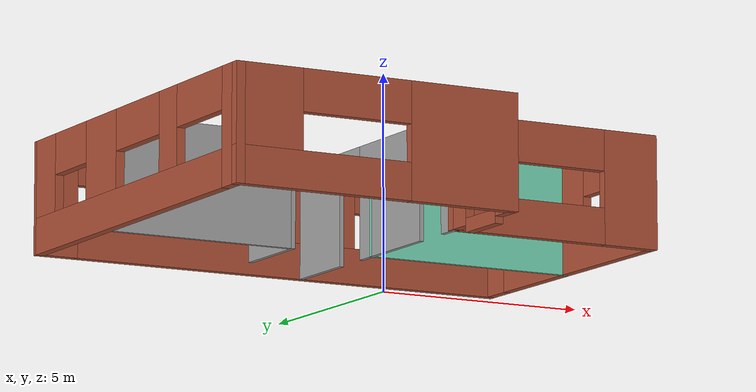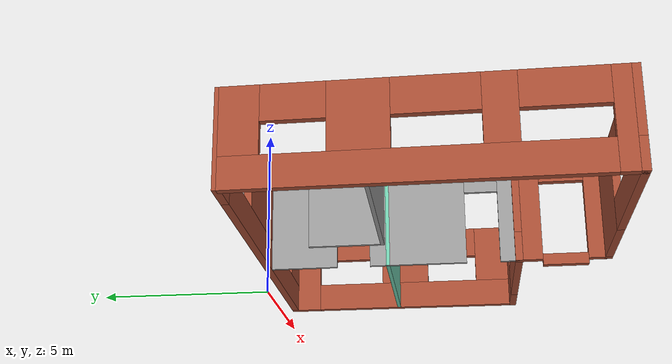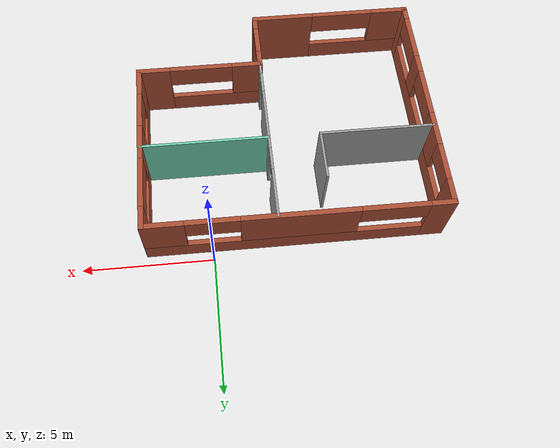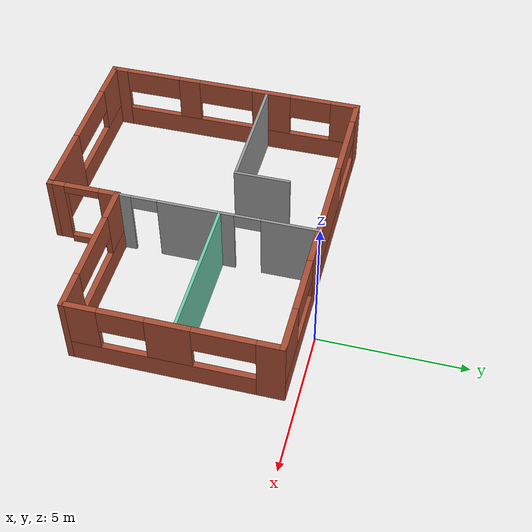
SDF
<?xml version='1.0'?>
<sdf version='1.6'>
  <model name='model'>
    <pose frame=''>-3.14097 -5.063 0 0 -0 0</pose>
    <link name='Wall_0'>
      <pose frame=''>-2.8e-05 4.6 0 0 -0 0</pose>
      <visual name='Wall_0_Visual_0'>
        <pose frame=''>-5.22555 0 1.25 0 -0 0</pose>
        <geometry>
          <box>
            <size>0.948891 0.2 2.5</size>
          </box>
        </geometry>
        <material>
          <script>
            <uri>file://media/materials/scripts/gazebo.material</uri>
            <name>Gazebo/Bricks</name>
          </script>
          <ambient>1 1 1 1</ambient>
        </material>
        <meta>
          <layer>0</layer>
        </meta>
      </visual>
      <collision name='Wall_0_Collision_0'>
        <geometry>
          <box>
            <size>0.948891 0.2 2.5</size>
          </box>
        </geometry>
        <pose frame=''>-5.22555 0 1.25 0 -0 0</pose>
      </collision>
      <visual name='Wall_0_Visual_1'>
        <pose frame=''>0.474446 0 0.4 0 -0 0</pose>
        <geometry>
          <box>
            <size>10.4511 0.2 0.8</size>
          </box>
        </geometry>
        <material>
          <script>
            <uri>file://media/materials/scripts/gazebo.material</uri>
            <name>Gazebo/Bricks</name>
          </script>
          <ambient>1 1 1 1</ambient>
        </material>
        <meta>
          <layer>0</layer>
        </meta>
      </visual>
      <collision name='Wall_0_Collision_1'>
        <geometry>
          <box>
            <size>10.4511 0.2 0.8</size>
          </box>
        </geometry>
        <pose frame=''>0.474446 0 0.4 0 -0 0</pose>
      </collision>
      <visual name='Wall_0_Visual_2'>
        <pose frame=''>-0.083414 0 1.65 0 -0 0</pose>
        <geometry>
          <box>
            <size>4.33539 0.2 1.7</size>
          </box>
        </geometry>
        <material>
          <script>
            <uri>file://media/materials/scripts/gazebo.material</uri>
            <name>Gazebo/Bricks</name>
          </script>
          <ambient>1 1 1 1</ambient>
        </material>
        <meta>
          <layer>0</layer>
        </meta>
      </visual>
      <collision name='Wall_0_Collision_2'>
        <geometry>
          <box>
            <size>4.33539 0.2 1.7</size>
          </box>
        </geometry>
        <pose frame=''>-0.083414 0 1.65 0 -0 0</pose>
      </collision>
      <visual name='Wall_0_Visual_3'>
        <pose frame=''>4.89214 0 1.65 0 -0 0</pose>
        <geometry>
          <box>
            <size>1.61572 0.2 1.7</size>
          </box>
        </geometry>
        <material>
          <script>
            <uri>file://media/materials/scripts/gazebo.material</uri>
            <name>Gazebo/Bricks</name>
          </script>
          <ambient>1 1 1 1</ambient>
        </material>
        <meta>
          <layer>0</layer>
        </meta>
      </visual>
      <collision name='Wall_0_Collision_3'>
        <geometry>
          <box>
            <size>1.61572 0.2 1.7</size>
          </box>
        </geometry>
        <pose frame=''>4.89214 0 1.65 0 -0 0</pose>
      </collision>
      <visual name='Wall_0_Visual_4'>
        <pose frame=''>-3.50111 0 2.05 0 -0 0</pose>
        <geometry>
          <box>
            <size>2.5 0.2 0.9</size>
          </box>
        </geometry>
        <material>
          <script>
            <uri>file://media/materials/scripts/gazebo.material</uri>
            <name>Gazebo/Bricks</name>
          </script>
          <ambient>1 1 1 1</ambient>
        </material>
        <meta>
          <layer>0</layer>
        </meta>
      </visual>
      <collision name='Wall_0_Collision_4'>
        <geometry>
          <box>
            <size>2.5 0.2 0.9</size>
          </box>
        </geometry>
        <pose frame=''>-3.50111 0 2.05 0 -0 0</pose>
      </collision>
      <visual name='Wall_0_Visual_5'>
        <pose frame=''>3.08428 0 2.05 0 -0 0</pose>
        <geometry>
          <box>
            <size>2 0.2 0.9</size>
          </box>
        </geometry>
        <material>
          <script>
            <uri>file://media/materials/scripts/gazebo.material</uri>
            <name>Gazebo/Bricks</name>
          </script>
          <ambient>1 1 1 1</ambient>
        </material>
        <meta>
          <layer>0</layer>
        </meta>
      </visual>
      <collision name='Wall_0_Collision_5'>
        <geometry>
          <box>
            <size>2 0.2 0.9</size>
          </box>
        </geometry>
        <pose frame=''>3.08428 0 2.05 0 -0 0</pose>
      </collision>
    </link>
    <link name='Wall_1'>
      <pose frame=''>5.59997 1.175 0 0 0 -1.5708</pose>
      <visual name='Wall_1_Visual_0'>
        <pose frame=''>-3.07016 0 1.25 0 -0 0</pose>
        <geometry>
          <box>
            <size>0.909337 0.2 2.5</size>
          </box>
        </geometry>
        <material>
          <script>
            <uri>file://media/materials/scripts/gazebo.material</uri>
            <name>Gazebo/Bricks</name>
          </script>
          <ambient>1 1 1 1</ambient>
        </material>
        <meta>
          <layer>0</layer>
        </meta>
      </visual>
      <collision name='Wall_1_Collision_0'>
        <geometry>
          <box>
            <size>0.909337 0.2 2.5</size>
          </box>
        </geometry>
        <pose frame=''>-3.07016 0 1.25 0 -0 0</pose>
      </collision>
      <visual name='Wall_1_Visual_1'>
        <pose frame=''>0.454668 0 0.4 0 -0 0</pose>
        <geometry>
          <box>
            <size>6.14033 0.2 0.8</size>
          </box>
        </geometry>
        <material>
          <script>
            <uri>file://media/materials/scripts/gazebo.material</uri>
            <name>Gazebo/Bricks</name>
          </script>
          <ambient>1 1 1 1</ambient>
        </material>
        <meta>
          <layer>0</layer>
        </meta>
      </visual>
      <collision name='Wall_1_Collision_1'>
        <geometry>
          <box>
            <size>6.14033 0.2 0.8</size>
          </box>
        </geometry>
        <pose frame=''>0.454668 0 0.4 0 -0 0</pose>
      </collision>
      <visual name='Wall_1_Visual_2'>
        <pose frame=''>0.106547 0 1.65 0 -0 0</pose>
        <geometry>
          <box>
            <size>1.44408 0.2 1.7</size>
          </box>
        </geometry>
        <material>
          <script>
            <uri>file://media/materials/scripts/gazebo.material</uri>
            <name>Gazebo/Bricks</name>
          </script>
          <ambient>1 1 1 1</ambient>
        </material>
        <meta>
          <layer>0</layer>
        </meta>
      </visual>
      <collision name='Wall_1_Collision_2'>
        <geometry>
          <box>
            <size>1.44408 0.2 1.7</size>
          </box>
        </geometry>
        <pose frame=''>0.106547 0 1.65 0 -0 0</pose>
      </collision>
      <visual name='Wall_1_Visual_3'>
        <pose frame=''>2.92671 0 1.65 0 -0 0</pose>
        <geometry>
          <box>
            <size>1.19624 0.2 1.7</size>
          </box>
        </geometry>
        <material>
          <script>
            <uri>file://media/materials/scripts/gazebo.material</uri>
            <name>Gazebo/Bricks</name>
          </script>
          <ambient>1 1 1 1</ambient>
        </material>
        <meta>
          <layer>0</layer>
        </meta>
      </visual>
      <collision name='Wall_1_Collision_3'>
        <geometry>
          <box>
            <size>1.19624 0.2 1.7</size>
          </box>
        </geometry>
        <pose frame=''>2.92671 0 1.65 0 -0 0</pose>
      </collision>
      <visual name='Wall_1_Visual_4'>
        <pose frame=''>-1.61549 0 2.05 0 -0 0</pose>
        <geometry>
          <box>
            <size>2 0.2 0.9</size>
          </box>
        </geometry>
        <material>
          <script>
            <uri>file://media/materials/scripts/gazebo.material</uri>
            <name>Gazebo/Bricks</name>
          </script>
          <ambient>1 1 1 1</ambient>
        </material>
        <meta>
          <layer>0</layer>
        </meta>
      </visual>
      <collision name='Wall_1_Collision_4'>
        <geometry>
          <box>
            <size>2 0.2 0.9</size>
          </box>
        </geometry>
        <pose frame=''>-1.61549 0 2.05 0 -0 0</pose>
      </collision>
      <visual name='Wall_1_Visual_5'>
        <pose frame=''>1.57859 0 2.05 0 -0 0</pose>
        <geometry>
          <box>
            <size>1.5 0.2 0.9</size>
          </box>
        </geometry>
        <material>
          <script>
            <uri>file://media/materials/scripts/gazebo.material</uri>
            <name>Gazebo/Bricks</name>
          </script>
          <ambient>1 1 1 1</ambient>
        </material>
        <meta>
          <layer>0</layer>
        </meta>
      </visual>
      <collision name='Wall_1_Collision_5'>
        <geometry>
          <box>
            <size>1.5 0.2 0.9</size>
          </box>
        </geometry>
        <pose frame=''>1.57859 0 2.05 0 -0 0</pose>
      </collision>
    </link>
    <link name='Wall_10'>
      <collision name='Wall_10_Collision'>
        <geometry>
          <box>
            <size>4.95 0.1 2.5</size>
          </box>
        </geometry>
        <pose frame=''>0 0 1.25 0 -0 0</pose>
      </collision>
      <visual name='Wall_10_Visual'>
        <pose frame=''>0 0 1.25 0 -0 0</pose>
        <geometry>
          <box>
            <size>4.95 0.1 2.5</size>
          </box>
        </geometry>
        <material>
          <script>
            <uri>file://media/materials/scripts/gazebo.material</uri>
            <name>Gazebo/Grey</name>
          </script>
          <ambient>0.435294 0.796078 0.67451 1</ambient>
        </material>
        <meta>
          <layer>0</layer>
        </meta>
      </visual>
      <pose frame=''>3.17497 1.285 0 0 -0 0</pose>
    </link>
    <link name='Wall_105'>
      <collision name='Wall_105_Collision'>
        <geometry>
          <box>
            <size>1.95 0.1 2.5</size>
          </box>
        </geometry>
        <pose frame=''>0 0 1.25 0 -0 0</pose>
      </collision>
      <visual name='Wall_105_Visual'>
        <pose frame=''>0 0 1.25 0 -0 0</pose>
        <geometry>
          <box>
            <size>1.95 0.1 2.5</size>
          </box>
        </geometry>
        <material>
          <script>
            <uri>file://media/materials/scripts/gazebo.material</uri>
            <name>Gazebo/Grey</name>
          </script>
          <ambient>1 1 1 1</ambient>
        </material>
        <meta>
          <layer>0</layer>
        </meta>
      </visual>
      <pose frame=''>-1.21903 2.21 0 0 -0 1.5708</pose>
    </link>
    <link name='Wall_13'>
      <collision name='Wall_13_Collision'>
        <geometry>
          <box>
            <size>4.45 0.1 2.5</size>
          </box>
        </geometry>
        <pose frame=''>0 0 1.25 0 -0 0</pose>
      </collision>
      <visual name='Wall_13_Visual'>
        <pose frame=''>0 0 1.25 0 -0 0</pose>
        <geometry>
          <box>
            <size>4.45 0.1 2.5</size>
          </box>
        </geometry>
        <material>
          <script>
            <uri>file://media/materials/scripts/gazebo.material</uri>
            <name>Gazebo/Grey</name>
          </script>
          <ambient>1 1 1 1</ambient>
        </material>
        <meta>
          <layer>0</layer>
        </meta>
      </visual>
      <pose frame=''>-3.39403 1.285 0 0 -0 0</pose>
    </link>
    <link name='Wall_2'>
      <pose frame=''>3.17497 -2.25 0 0 -0 3.14159</pose>
      <visual name='Wall_2_Visual_0'>
        <pose frame=''>-1.86504 0 1.25 0 -0 0</pose>
        <geometry>
          <box>
            <size>1.32004 0.2 2.5</size>
          </box>
        </geometry>
        <material>
          <script>
            <uri>file://media/materials/scripts/gazebo.material</uri>
            <name>Gazebo/Bricks</name>
          </script>
          <ambient>1 1 1 1</ambient>
        </material>
        <meta>
          <layer>0</layer>
        </meta>
      </visual>
      <collision name='Wall_2_Collision_0'>
        <geometry>
          <box>
            <size>1.32004 0.2 2.5</size>
          </box>
        </geometry>
        <pose frame=''>-1.86504 0 1.25 0 -0 0</pose>
      </collision>
      <visual name='Wall_2_Visual_1'>
        <pose frame=''>0.660018 0 0.4 0 -0 0</pose>
        <geometry>
          <box>
            <size>3.73008 0.2 0.8</size>
          </box>
        </geometry>
        <material>
          <script>
            <uri>file://media/materials/scripts/gazebo.material</uri>
            <name>Gazebo/Bricks</name>
          </script>
          <ambient>1 1 1 1</ambient>
        </material>
        <meta>
          <layer>0</layer>
        </meta>
      </visual>
      <collision name='Wall_2_Collision_1'>
        <geometry>
          <box>
            <size>3.73008 0.2 0.8</size>
          </box>
        </geometry>
        <pose frame=''>0.660018 0 0.4 0 -0 0</pose>
      </collision>
      <visual name='Wall_2_Visual_2'>
        <pose frame=''>1.91002 0 1.65 0 -0 0</pose>
        <geometry>
          <box>
            <size>1.23008 0.2 1.7</size>
          </box>
        </geometry>
        <material>
          <script>
            <uri>file://media/materials/scripts/gazebo.material</uri>
            <name>Gazebo/Bricks</name>
          </script>
          <ambient>1 1 1 1</ambient>
        </material>
        <meta>
          <layer>0</layer>
        </meta>
      </visual>
      <collision name='Wall_2_Collision_2'>
        <geometry>
          <box>
            <size>1.23008 0.2 1.7</size>
          </box>
        </geometry>
        <pose frame=''>1.91002 0 1.65 0 -0 0</pose>
      </collision>
      <visual name='Wall_2_Visual_3'>
        <pose frame=''>0.044979 0 2.05 0 -0 0</pose>
        <geometry>
          <box>
            <size>2.5 0.2 0.9</size>
          </box>
        </geometry>
        <material>
          <script>
            <uri>file://media/materials/scripts/gazebo.material</uri>
            <name>Gazebo/Bricks</name>
          </script>
          <ambient>1 1 1 1</ambient>
        </material>
        <meta>
          <layer>0</layer>
        </meta>
      </visual>
      <collision name='Wall_2_Collision_3'>
        <geometry>
          <box>
            <size>2.5 0.2 0.9</size>
          </box>
        </geometry>
        <pose frame=''>0.044979 0 2.05 0 -0 0</pose>
      </collision>
    </link>
    <link name='Wall_3'>
      <pose frame=''>0.749972 -3.425 0 0 0 -1.5708</pose>
      <visual name='Wall_3_Visual_0'>
        <pose frame=''>-0.912077 0 1.25 0 -0 0</pose>
        <geometry>
          <box>
            <size>0.725846 0.2 2.5</size>
          </box>
        </geometry>
        <material>
          <script>
            <uri>file://media/materials/scripts/gazebo.material</uri>
            <name>Gazebo/Bricks</name>
          </script>
          <ambient>1 1 1 1</ambient>
        </material>
        <meta>
          <layer>0</layer>
        </meta>
      </visual>
      <collision name='Wall_3_Collision_0'>
        <geometry>
          <box>
            <size>0.725846 0.2 2.5</size>
          </box>
        </geometry>
        <pose frame=''>-0.912077 0 1.25 0 -0 0</pose>
      </collision>
      <visual name='Wall_3_Visual_1'>
        <pose frame=''>0.962923 0 1.25 0 -0 0</pose>
        <geometry>
          <box>
            <size>0.624154 0.2 2.5</size>
          </box>
        </geometry>
        <material>
          <script>
            <uri>file://media/materials/scripts/gazebo.material</uri>
            <name>Gazebo/Bricks</name>
          </script>
          <ambient>1 1 1 1</ambient>
        </material>
        <meta>
          <layer>0</layer>
        </meta>
      </visual>
      <collision name='Wall_3_Collision_1'>
        <geometry>
          <box>
            <size>0.624154 0.2 2.5</size>
          </box>
        </geometry>
        <pose frame=''>0.962923 0 1.25 0 -0 0</pose>
      </collision>
      <visual name='Wall_3_Visual_2'>
        <pose frame=''>0.050846 0 0 0 -0 0</pose>
        <geometry>
          <box>
            <size>1.2 0.2 0.3</size>
          </box>
        </geometry>
        <material>
          <script>
            <uri>file://media/materials/scripts/gazebo.material</uri>
            <name>Gazebo/Bricks</name>
          </script>
          <ambient>1 1 1 1</ambient>
        </material>
        <meta>
          <layer>0</layer>
        </meta>
      </visual>
      <collision name='Wall_3_Collision_2'>
        <geometry>
          <box>
            <size>1.2 0.2 0.3</size>
          </box>
        </geometry>
        <pose frame=''>0.050846 0 0 0 -0 0</pose>
      </collision>
      <visual name='Wall_3_Visual_3'>
        <pose frame=''>0.050846 0 2.35 0 -0 0</pose>
        <geometry>
          <box>
            <size>1.2 0.2 0.3</size>
          </box>
        </geometry>
        <material>
          <script>
            <uri>file://media/materials/scripts/gazebo.material</uri>
            <name>Gazebo/Bricks</name>
          </script>
          <ambient>1 1 1 1</ambient>
        </material>
        <meta>
          <layer>0</layer>
        </meta>
      </visual>
      <collision name='Wall_3_Collision_3'>
        <geometry>
          <box>
            <size>1.2 0.2 0.3</size>
          </box>
        </geometry>
        <pose frame=''>0.050846 0 2.35 0 -0 0</pose>
      </collision>
    </link>
    <link name='Wall_4'>
      <pose frame=''>-2.42503 -4.6 0 0 -0 3.14159</pose>
      <visual name='Wall_4_Visual_0'>
        <pose frame=''>-2.01344 0 1.25 0 -0 0</pose>
        <geometry>
          <box>
            <size>2.52313 0.2 2.5</size>
          </box>
        </geometry>
        <material>
          <script>
            <uri>file://media/materials/scripts/gazebo.material</uri>
            <name>Gazebo/Bricks</name>
          </script>
          <ambient>1 1 1 1</ambient>
        </material>
        <meta>
          <layer>0</layer>
        </meta>
      </visual>
      <collision name='Wall_4_Collision_0'>
        <geometry>
          <box>
            <size>2.52313 0.2 2.5</size>
          </box>
        </geometry>
        <pose frame=''>-2.01344 0 1.25 0 -0 0</pose>
      </collision>
      <visual name='Wall_4_Visual_1'>
        <pose frame=''>1.26156 0 0.4 0 -0 0</pose>
        <geometry>
          <box>
            <size>4.02687 0.2 0.8</size>
          </box>
        </geometry>
        <material>
          <script>
            <uri>file://media/materials/scripts/gazebo.material</uri>
            <name>Gazebo/Bricks</name>
          </script>
          <ambient>1 1 1 1</ambient>
        </material>
        <meta>
          <layer>0</layer>
        </meta>
      </visual>
      <collision name='Wall_4_Collision_1'>
        <geometry>
          <box>
            <size>4.02687 0.2 0.8</size>
          </box>
        </geometry>
        <pose frame=''>1.26156 0 0.4 0 -0 0</pose>
      </collision>
      <visual name='Wall_4_Visual_2'>
        <pose frame=''>2.51156 0 1.65 0 -0 0</pose>
        <geometry>
          <box>
            <size>1.52687 0.2 1.7</size>
          </box>
        </geometry>
        <material>
          <script>
            <uri>file://media/materials/scripts/gazebo.material</uri>
            <name>Gazebo/Bricks</name>
          </script>
          <ambient>1 1 1 1</ambient>
        </material>
        <meta>
          <layer>0</layer>
        </meta>
      </visual>
      <collision name='Wall_4_Collision_2'>
        <geometry>
          <box>
            <size>1.52687 0.2 1.7</size>
          </box>
        </geometry>
        <pose frame=''>2.51156 0 1.65 0 -0 0</pose>
      </collision>
      <visual name='Wall_4_Visual_3'>
        <pose frame=''>0.498127 0 2.05 0 -0 0</pose>
        <geometry>
          <box>
            <size>2.5 0.2 0.9</size>
          </box>
        </geometry>
        <material>
          <script>
            <uri>file://media/materials/scripts/gazebo.material</uri>
            <name>Gazebo/Bricks</name>
          </script>
          <ambient>1 1 1 1</ambient>
        </material>
        <meta>
          <layer>0</layer>
        </meta>
      </visual>
      <collision name='Wall_4_Collision_3'>
        <geometry>
          <box>
            <size>2.5 0.2 0.9</size>
          </box>
        </geometry>
        <pose frame=''>0.498127 0 2.05 0 -0 0</pose>
      </collision>
    </link>
    <link name='Wall_5'>
      <pose frame=''>-5.60003 -0.05 0 0 -0 1.5708</pose>
      <visual name='Wall_5_Visual_0'>
        <pose frame=''>-4.33244 0 1.25 0 -0 0</pose>
        <geometry>
          <box>
            <size>0.635126 0.2 2.5</size>
          </box>
        </geometry>
        <material>
          <script>
            <uri>file://media/materials/scripts/gazebo.material</uri>
            <name>Gazebo/Bricks</name>
          </script>
          <ambient>1 1 1 1</ambient>
        </material>
        <meta>
          <layer>0</layer>
        </meta>
      </visual>
      <collision name='Wall_5_Collision_0'>
        <geometry>
          <box>
            <size>0.635126 0.2 2.5</size>
          </box>
        </geometry>
        <pose frame=''>-4.33244 0 1.25 0 -0 0</pose>
      </collision>
      <visual name='Wall_5_Visual_1'>
        <pose frame=''>0.317563 0 0.4 0 -0 0</pose>
        <geometry>
          <box>
            <size>8.66487 0.2 0.8</size>
          </box>
        </geometry>
        <material>
          <script>
            <uri>file://media/materials/scripts/gazebo.material</uri>
            <name>Gazebo/Bricks</name>
          </script>
          <ambient>1 1 1 1</ambient>
        </material>
        <meta>
          <layer>0</layer>
        </meta>
      </visual>
      <collision name='Wall_5_Collision_1'>
        <geometry>
          <box>
            <size>8.66487 0.2 0.8</size>
          </box>
        </geometry>
        <pose frame=''>0.317563 0 0.4 0 -0 0</pose>
      </collision>
      <visual name='Wall_5_Visual_2'>
        <pose frame=''>-1.61567 0 1.65 0 -0 0</pose>
        <geometry>
          <box>
            <size>0.798409 0.2 1.7</size>
          </box>
        </geometry>
        <material>
          <script>
            <uri>file://media/materials/scripts/gazebo.material</uri>
            <name>Gazebo/Bricks</name>
          </script>
          <ambient>1 1 1 1</ambient>
        </material>
        <meta>
          <layer>0</layer>
        </meta>
      </visual>
      <collision name='Wall_5_Collision_2'>
        <geometry>
          <box>
            <size>0.798409 0.2 1.7</size>
          </box>
        </geometry>
        <pose frame=''>-1.61567 0 1.65 0 -0 0</pose>
      </collision>
      <visual name='Wall_5_Visual_3'>
        <pose frame=''>1.49785 0 1.65 0 -0 0</pose>
        <geometry>
          <box>
            <size>1.42863 0.2 1.7</size>
          </box>
        </geometry>
        <material>
          <script>
            <uri>file://media/materials/scripts/gazebo.material</uri>
            <name>Gazebo/Bricks</name>
          </script>
          <ambient>1 1 1 1</ambient>
        </material>
        <meta>
          <layer>0</layer>
        </meta>
      </visual>
      <collision name='Wall_5_Collision_3'>
        <geometry>
          <box>
            <size>1.42863 0.2 1.7</size>
          </box>
        </geometry>
        <pose frame=''>1.49785 0 1.65 0 -0 0</pose>
      </collision>
      <visual name='Wall_5_Visual_4'>
        <pose frame=''>4.18108 0 1.65 0 -0 0</pose>
        <geometry>
          <box>
            <size>0.937835 0.2 1.7</size>
          </box>
        </geometry>
        <material>
          <script>
            <uri>file://media/materials/scripts/gazebo.material</uri>
            <name>Gazebo/Bricks</name>
          </script>
          <ambient>1 1 1 1</ambient>
        </material>
        <meta>
          <layer>0</layer>
        </meta>
      </visual>
      <collision name='Wall_5_Collision_4'>
        <geometry>
          <box>
            <size>0.937835 0.2 1.7</size>
          </box>
        </geometry>
        <pose frame=''>4.18108 0 1.65 0 -0 0</pose>
      </collision>
      <visual name='Wall_5_Visual_5'>
        <pose frame=''>-3.01487 0 2.05 0 -0 0</pose>
        <geometry>
          <box>
            <size>2 0.2 0.9</size>
          </box>
        </geometry>
        <material>
          <script>
            <uri>file://media/materials/scripts/gazebo.material</uri>
            <name>Gazebo/Bricks</name>
          </script>
          <ambient>1 1 1 1</ambient>
        </material>
        <meta>
          <layer>0</layer>
        </meta>
      </visual>
      <collision name='Wall_5_Collision_5'>
        <geometry>
          <box>
            <size>2 0.2 0.9</size>
          </box>
        </geometry>
        <pose frame=''>-3.01487 0 2.05 0 -0 0</pose>
      </collision>
      <visual name='Wall_5_Visual_6'>
        <pose frame=''>-0.216464 0 2.05 0 -0 0</pose>
        <geometry>
          <box>
            <size>2 0.2 0.9</size>
          </box>
        </geometry>
        <material>
          <script>
            <uri>file://media/materials/scripts/gazebo.material</uri>
            <name>Gazebo/Bricks</name>
          </script>
          <ambient>1 1 1 1</ambient>
        </material>
        <meta>
          <layer>0</layer>
        </meta>
      </visual>
      <collision name='Wall_5_Collision_6'>
        <geometry>
          <box>
            <size>2 0.2 0.9</size>
          </box>
        </geometry>
        <pose frame=''>-0.216464 0 2.05 0 -0 0</pose>
      </collision>
      <visual name='Wall_5_Visual_7'>
        <pose frame=''>2.96217 0 2.05 0 -0 0</pose>
        <geometry>
          <box>
            <size>1.5 0.2 0.9</size>
          </box>
        </geometry>
        <material>
          <script>
            <uri>file://media/materials/scripts/gazebo.material</uri>
            <name>Gazebo/Bricks</name>
          </script>
          <ambient>1 1 1 1</ambient>
        </material>
        <meta>
          <layer>0</layer>
        </meta>
      </visual>
      <collision name='Wall_5_Collision_7'>
        <geometry>
          <box>
            <size>1.5 0.2 0.9</size>
          </box>
        </geometry>
        <pose frame=''>2.96217 0 2.05 0 -0 0</pose>
      </collision>
    </link>
    <link name='Wall_8'>
      <pose frame=''>0.749972 1.175 0 0 -0 1.5708</pose>
      <visual name='Wall_8_Visual_0'>
        <pose frame=''>-3.20058 0 1.25 0 -0 0</pose>
        <geometry>
          <box>
            <size>0.549173 0.1 2.5</size>
          </box>
        </geometry>
        <material>
          <script>
            <uri>file://media/materials/scripts/gazebo.material</uri>
            <name>Gazebo/Grey</name>
          </script>
          <ambient>1 1 1 1</ambient>
        </material>
        <meta>
          <layer>0</layer>
        </meta>
      </visual>
      <collision name='Wall_8_Collision_0'>
        <geometry>
          <box>
            <size>0.549173 0.1 2.5</size>
          </box>
        </geometry>
        <pose frame=''>-3.20058 0 1.25 0 -0 0</pose>
      </collision>
      <visual name='Wall_8_Visual_1'>
        <pose frame=''>-0.711612 0 1.25 0 -0 0</pose>
        <geometry>
          <box>
            <size>2.62877 0.1 2.5</size>
          </box>
        </geometry>
        <material>
          <script>
            <uri>file://media/materials/scripts/gazebo.material</uri>
            <name>Gazebo/Grey</name>
          </script>
          <ambient>1 1 1 1</ambient>
        </material>
        <meta>
          <layer>0</layer>
        </meta>
      </visual>
      <collision name='Wall_8_Collision_1'>
        <geometry>
          <box>
            <size>2.62877 0.1 2.5</size>
          </box>
        </geometry>
        <pose frame=''>-0.711612 0 1.25 0 -0 0</pose>
      </collision>
      <visual name='Wall_8_Visual_2'>
        <pose frame=''>2.48897 0 1.25 0 -0 0</pose>
        <geometry>
          <box>
            <size>1.9724 0.1 2.5</size>
          </box>
        </geometry>
        <material>
          <script>
            <uri>file://media/materials/scripts/gazebo.material</uri>
            <name>Gazebo/Grey</name>
          </script>
          <ambient>1 1 1 1</ambient>
        </material>
        <meta>
          <layer>0</layer>
        </meta>
      </visual>
      <collision name='Wall_8_Collision_2'>
        <geometry>
          <box>
            <size>1.9724 0.1 2.5</size>
          </box>
        </geometry>
        <pose frame=''>2.48897 0 1.25 0 -0 0</pose>
      </collision>
      <visual name='Wall_8_Visual_3'>
        <pose frame=''>-2.476 0 2.25 0 -0 0</pose>
        <geometry>
          <box>
            <size>0.9 0.1 0.5</size>
          </box>
        </geometry>
        <material>
          <script>
            <uri>file://media/materials/scripts/gazebo.material</uri>
            <name>Gazebo/Grey</name>
          </script>
          <ambient>1 1 1 1</ambient>
        </material>
        <meta>
          <layer>0</layer>
        </meta>
      </visual>
      <collision name='Wall_8_Collision_3'>
        <geometry>
          <box>
            <size>0.9 0.1 0.5</size>
          </box>
        </geometry>
        <pose frame=''>-2.476 0 2.25 0 -0 0</pose>
      </collision>
      <visual name='Wall_8_Visual_4'>
        <pose frame=''>1.05277 0 2.25 0 -0 0</pose>
        <geometry>
          <box>
            <size>0.9 0.1 0.5</size>
          </box>
        </geometry>
        <material>
          <script>
            <uri>file://media/materials/scripts/gazebo.material</uri>
            <name>Gazebo/Grey</name>
          </script>
          <ambient>1 1 1 1</ambient>
        </material>
        <meta>
          <layer>0</layer>
        </meta>
      </visual>
      <collision name='Wall_8_Collision_4'>
        <geometry>
          <box>
            <size>0.9 0.1 0.5</size>
          </box>
        </geometry>
        <pose frame=''>1.05277 0 2.25 0 -0 0</pose>
      </collision>
    </link>
    <static>1</static>
  </model>
</sdf>
